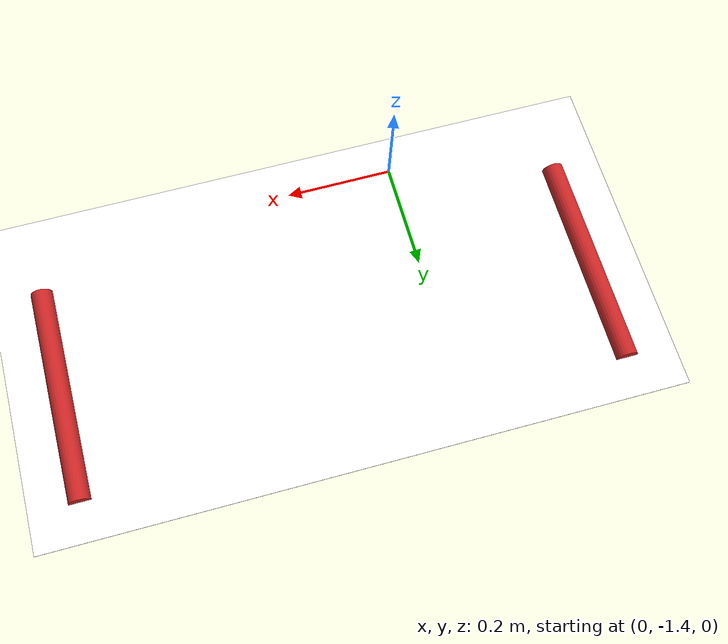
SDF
<?xml version="1.0" ?>
<sdf version="1.4">
  <world name="default">
    <gui>
      <camera name="user_camera">
        <pose>0 0 2.4 0 1.5708 -3.1415</pose>
      </camera>
    </gui>
    <scene>
      <ambient>0.5 0.5 0.5 1.0</ambient>
      <shadows>0</shadows>
    </scene>
    <include>
      <uri>model://ground_plane</uri>
    </include>
    <include>
      <uri>model://sun</uri>
    </include>
    <include>
      <uri>model://racetrack20</uri>
      <name>race_track20</name>
      <pose>0 0 0 0 0 0</pose>
    </include>
    <include>
      <uri>model://object</uri>
      <name>object</name>
      <pose>-0.305706 -1.123700 0.0 0 0 0</pose>
    </include>
    <include>
      <uri>model://object</uri>
      <name>object2</name>
      <pose>0.688190 -1.121177 0.0 0 0 0</pose>
    </include>

  </world>
</sdf>

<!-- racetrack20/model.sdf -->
<sdf version='1.6'>
  <model name='race_track20'>
    <static>true</static>
    <link name='link'>
      <visual name='visual'>
        <geometry>
          <box>
            <size>2.894 3.50 0.000553</size>
          </box>
        </geometry>
        <material>
          <script>
            <name>RaceTrack20/track20</name>
	    <uri>model://racetrack20/materials/scripts</uri>
            <uri>model://racetrack20/materials/textures</uri>
          </script>
          <ambient>1 1 1 1</ambient>
          <diffuse>1 1 1 1</diffuse>
          <specular>0.01 0.01 0.01 1</specular>
          <emissive>1 1 1 1</emissive>
        </material>
        <transparency>0</transparency>
      </visual>
      <collision name='collision'>
        <geometry>
          <box>
            <size>1.477 1.750 0.000553</size>
          </box>
        </geometry>
	<surface>
          <friction>
            <ode>
              <mu>100</mu>
              <mu2>50</mu2>
            </ode>
          </friction>
        </surface>
      </collision>
    </link>
  </model>
</sdf>

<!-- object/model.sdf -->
<sdf version="1.5">
  <model name="object">
    <link name="link">
      <pose>0 0 0 1.57079632679 0 0</pose>
      <gravity>false</gravity>
      <inertial name="inertial">
        <pose>0 0 0 0 0 0</pose>
        <mass>0.00001</mass>
        <inertia>
          <ixx>0.00001</ixx>
          <ixy>0</ixy>
          <ixz>0</ixz>
          <iyy>0.00001</iyy>
          <iyz>0</iyz>
          <izz>0.00001</izz>
        </inertia>
      </inertial>

      <collision name="collision">
        <geometry>
          <cylinder>
            <length>0.4</length>
            <radius>0.02</radius>
          </cylinder>
        </geometry>
        <surface>
          <contact>
            <ode>
              <min_depth>0.001</min_depth>
              <max_vel>1000</max_vel>
            </ode>
          </contact>
          <friction>
            <ode>
              <mu>100000</mu>
              <mu2>100000</mu2>
            </ode>
          </friction>
        </surface>
      </collision>

      <visual name="visual">
        <cast_shadows>false</cast_shadows>
        <pose>0 0 0 0 0 0</pose>
        <geometry>
          <cylinder>
            <length>0.4</length>
            <radius>0.02</radius>
          </cylinder>
        </geometry>
        <material>
          <script>
            <uri>__default__</uri>
            <name>Gazebo/Red</name>
          </script>
        </material>
      </visual>
    </link>
  </model>
</sdf>
